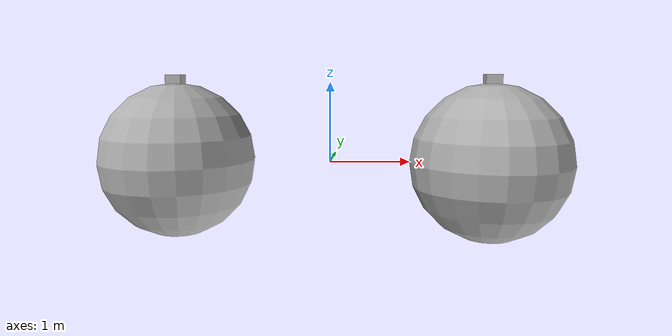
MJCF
<mujoco>
  <option gravity="0 0 -9.81" />
  <worldbody>
    <body name="object_1" pos="-2 0 1">
      <geom type="box" size="0.1 0.1 0.1" density="1" rgba="0.7 0.7 0.7 1" />
      <joint type="free" name="object_1_joint" />
    </body>
    <body name="object_2" pos="2 0 1">
      <geom type="box" size="0.1 0.1 0.1" density="1" rgba="0.7 0.7 0.7 1" />
      <joint type="free" name="object_2_joint" />
    </body>
  <body name="ramp_1" pos="-2.0 0.0 0.0"><geom type="sphere" size="1.0" rgba="0.7 0.7 0.7 1" /></body><body name="ramp_2" pos="2.0 0.0 0.0"><geom type="sphere" size="1.0" rgba="0.7 0.7 0.7 1" /></body></worldbody>
</mujoco>
